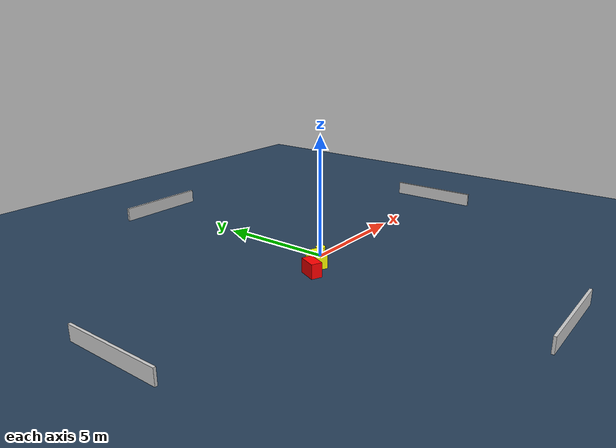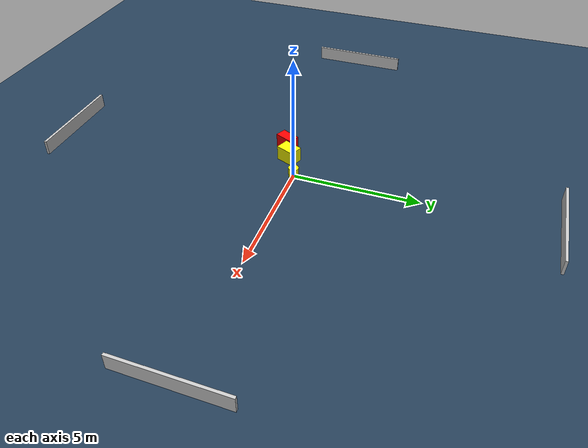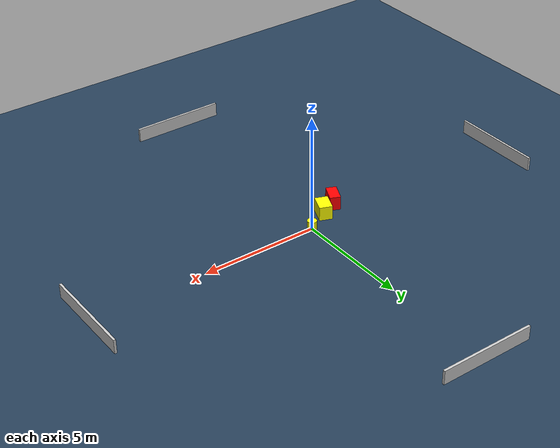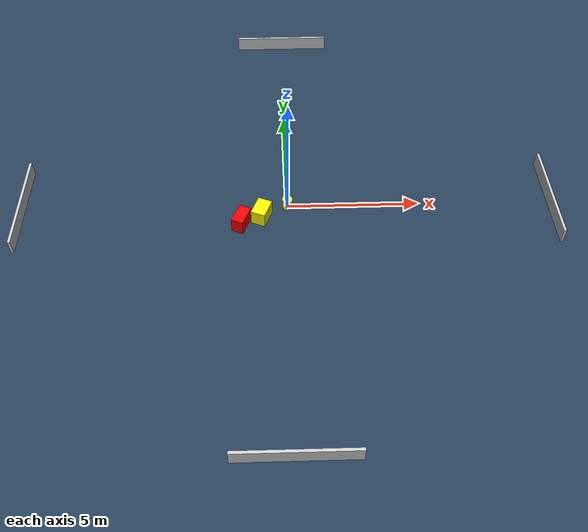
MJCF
<?xml version="1.0" ?>
<mujoco model="generated_environment">
  <option timestep="0.01" integrator="RK4" cone="elliptic"/>
  <default>
    <geom density="1"/>
  </default>
  <asset>
    <texture builtin="gradient" height="3072" name="skybox" rgb1="0.3 0.5 0.7" rgb2="0 0 0" type="skybox" width="512"/>
    <texture builtin="checker" height="300" name="groundplane" rgb1="0.2 0.3 0.4" rgb2="0.1 0.2 0.3" type="2d" width="300"/>
    <material name="groundplane" reflectance="0.2" texrepeat="5 5" texture="groundplane"/>
  </asset>
  <worldbody>
    <light dir="0 0 -1" directional="true" pos="0 0 1.5"/>
    <geom condim="3" friction="0.5 0.005 0.001" material="groundplane" name="floor" pos="0 0 0" size="0 0 0.05" type="plane"/>
    <body name="walls">
      <geom name="wall_1" condim="4" pos="-10.0 0.0 0.3" rgba="0.800000011920929 0.800000011920929 0.800000011920929 1.0" size="0.05 2.0 0.3" type="box"/>
      <geom name="wall_2" condim="4" pos="10.0 0.0 0.3" rgba="0.800000011920929 0.800000011920929 0.800000011920929 1.0" size="0.05 2.0 0.3" type="box"/>
      <geom name="wall_3" condim="4" pos="0.0 -10.0 0.3" rgba="0.800000011920929 0.800000011920929 0.800000011920929 1.0" size="2.0 0.05 0.3" type="box"/>
      <geom name="wall_4" condim="4" pos="0.0 10.0 0.3" rgba="0.800000011920929 0.800000011920929 0.800000011920929 1.0" size="2.0 0.05 0.3" type="box"/>
    </body>
    <body name="robot">
      <joint name="joint_x" type="slide" pos="0 0 0" axis="1 0 0"/>
      <joint name="joint_y" type="slide" pos="0 0 0" axis="0 1 0"/>
      <geom name="robot" type="cylinder" pos="0.0 0.0 0.2" size="0.2 0.2 0.0" mass="5.0" friction="1.0 0.005 0.0001" condim="4" rgba="1.0 1.0 0.0 1.0"/>
    </body>
    <body name="obstacle_1_movable">
      <geom name="obstacle_1_movable" condim="4" pos="-0.9713609711635558 -0.5337439573341505 0.3" euler="0 0 157.97406345819653" friction="0.0 0.005 0.001" rgba="1.0 1.0 0.0 1.0" size="0.27399401676848784 0.3887893683958985 0.3" type="box" mass="0.1"/>
      <joint type="free"/>
    </body>
    <body name="obstacle_2_static">
      <geom name="obstacle_2_static" condim="4" pos="-1.7228795094626934 -0.8767974172462641 0.3" euler="0 0 335.8256734667142" friction="0.0 0.005 0.001" rgba="1.0 0.0 0.0 1.0" size="0.22637330019743143 0.396511907587041 0.3" type="box"/>
    </body>
  </worldbody>
  <actuator>
    <motor name="actuator_x" joint="joint_x" gear="1" ctrlrange="-1 1"/>
    <motor name="actuator_y" joint="joint_y" gear="1" ctrlrange="-1 1"/>
  </actuator>
</mujoco>
